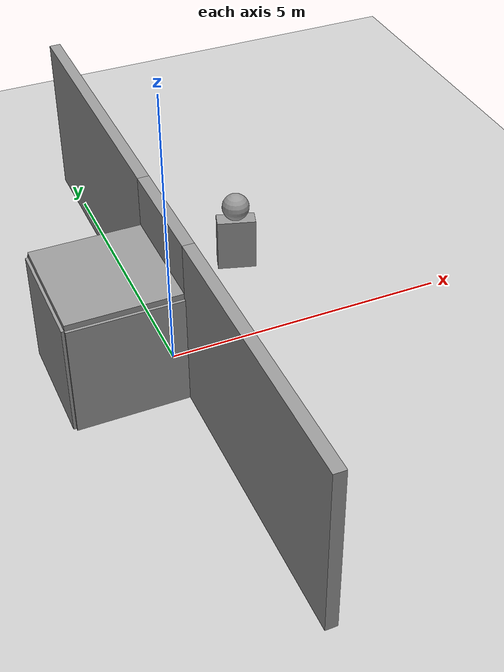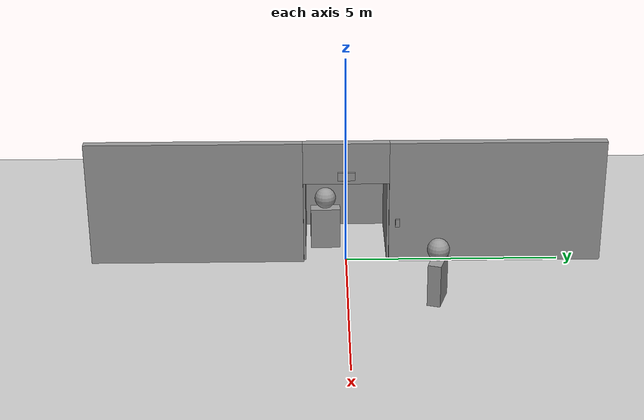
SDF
<sdf version="1.7">
 <world name="default">
  <light name="sun" type="directional">
   <pose>0 0 10 0 -0 0</pose>
   <diffuse>0.8 0.8 0.8 1</diffuse>
   <specular>0.2 0.2 0.2 1</specular>
   <attenuation>
    <range>1000</range>
    <constant>0.9</constant>
    <linear>0.01</linear>
    <quadratic>0.001</quadratic>
   </attenuation>
   <direction>-0.5 0.1 -0.9</direction>
   <spot><inner_angle>0</inner_angle><outer_angle>0</outer_angle><falloff>0</falloff></spot>
  </light>
  <model name="ground_plane">
   <static>1</static>
   <link name="link">
    <collision name="collision">
     <geometry><plane><normal>0 0 1</normal><size>100 100</size></plane></geometry>
     <surface><friction><ode><mu>100</mu><mu2>50</mu2></ode></friction></surface>
    </collision>
    <visual name="visual">
     <cast_shadows>0</cast_shadows>
     <geometry><plane><normal>0 0 1</normal><size>100 100</size></plane></geometry>
     <material>
      <script><uri>file://media/materials/scripts/gazebo.material</uri><name>Gazebo/Grey</name></script>
     </material>
    </visual>
   </link>
  </model>
  <gravity>0 0 -9.8</gravity>
  <magnetic_field>6e-06 2.3e-05 -4.2e-05</magnetic_field>
  <atmosphere type="adiabatic"/>
  <physics type="ode">
   <max_step_size>0.001</max_step_size>
   <real_time_factor>1</real_time_factor>
   <real_time_update_rate>1000</real_time_update_rate>
  </physics>
  <scene><ambient>0.4 0.4 0.4 1</ambient><background>0.7 0.7 0.7 1</background><shadows>1</shadows></scene>
  <spherical_coordinates>
   <surface_model>EARTH_WGS84</surface_model>
   <latitude_deg>0</latitude_deg>
   <longitude_deg>0</longitude_deg>
   <elevation>0</elevation>
   <heading_deg>0</heading_deg>
  </spherical_coordinates>
  <model name="elevator">
   <link name="link_1">
    <inertial>
     <mass>1</mass>
     <inertia>
      <ixx>0.166667</ixx>
      <ixy>0</ixy>
      <ixz>0</ixz>
      <iyy>0.166667</iyy>
      <iyz>0</iyz>
      <izz>0.166667</izz>
     </inertia>
    </inertial>
    <pose>0.125 0 2.2 0 -0 0</pose>
    <visual name="visual">
     <geometry><box><size>0.05 0.4 0.2</size></box></geometry>
     <material>
      <lighting>1</lighting>
      <script><uri>file://media/materials/scripts/gazebo.material</uri><name>Gazebo/Grey</name></script>
      <shader type="pixel"><normal_map>__default__</normal_map></shader>
      <ambient>0.6 0.6 0.6 1</ambient>
      <diffuse>0.6 0.6 0.6 1</diffuse>
      <specular>0.6 0.6 0.6 1</specular>
      <emissive>0 0 0 1</emissive>
     </material>
    </visual>
    <collision name="collision">
     <geometry><box><size>0.05 0.4 0.2</size></box></geometry>
     <surface>
      <friction>
       <ode><mu>1</mu><mu2>1</mu2><fdir1>0 0 0</fdir1><slip1>0</slip1><slip2>0</slip2></ode>
       <torsional>
        <coefficient>1</coefficient>
        <patch_radius>0</patch_radius>
        <surface_radius>0</surface_radius>
        <use_patch_radius>1</use_patch_radius>
        <ode><slip>0</slip></ode>
       </torsional>
      </friction>
      <bounce><restitution_coefficient>0</restitution_coefficient><threshold>1e+06</threshold></bounce>
      <contact>
       <collide_without_contact>0</collide_without_contact>
       <collide_without_contact_bitmask>1</collide_without_contact_bitmask>
       <collide_bitmask>1</collide_bitmask>
       <ode>
        <soft_cfm>0</soft_cfm>
        <soft_erp>0.2</soft_erp>
        <kp>1e+13</kp>
        <kd>1</kd>
        <max_vel>0.01</max_vel>
        <min_depth>0</min_depth>
       </ode>
       <bullet>
        <split_impulse>1</split_impulse>
        <split_impulse_penetration_threshold>-0.01</split_impulse_penetration_threshold>
        <soft_cfm>0</soft_cfm>
        <soft_erp>0.2</soft_erp>
        <kp>1e+13</kp>
        <kd>1</kd>
       </bullet>
      </contact>
     </surface>
    </collision>
   </link>
   <link name="link_1_clone">
    <inertial>
     <mass>1</mass>
     <inertia>
      <ixx>0.166667</ixx>
      <ixy>0</ixy>
      <ixz>0</ixz>
      <iyy>0.166667</iyy>
      <iyz>0</iyz>
      <izz>0.166667</izz>
     </inertia>
    </inertial>
    <pose>0.115 1.2 1 0 -0 0</pose>
    <visual name="visual">
     <geometry><box><size>0.05 0.1 0.2</size></box></geometry>
     <material>
      <lighting>1</lighting>
      <script><uri>file://media/materials/scripts/gazebo.material</uri><name>Gazebo/Grey</name></script>
      <shader type="pixel"><normal_map>__default__</normal_map></shader>
      <ambient>0.6 0.6 0.6 1</ambient>
      <diffuse>0.6 0.6 0.6 1</diffuse>
      <specular>0.6 0.6 0.6 1</specular>
      <emissive>0 0 0 1</emissive>
     </material>
    </visual>
    <collision name="collision">
     <geometry><box><size>0.05 0.1 0.2</size></box></geometry>
     <surface>
      <friction>
       <ode><mu>1</mu><mu2>1</mu2><fdir1>0 0 0</fdir1><slip1>0</slip1><slip2>0</slip2></ode>
       <torsional>
        <coefficient>1</coefficient>
        <patch_radius>0</patch_radius>
        <surface_radius>0</surface_radius>
        <use_patch_radius>1</use_patch_radius>
        <ode><slip>0</slip></ode>
       </torsional>
      </friction>
      <bounce><restitution_coefficient>0</restitution_coefficient><threshold>1e+06</threshold></bounce>
      <contact>
       <collide_without_contact>0</collide_without_contact>
       <collide_without_contact_bitmask>1</collide_without_contact_bitmask>
       <collide_bitmask>1</collide_bitmask>
       <ode>
        <soft_cfm>0</soft_cfm>
        <soft_erp>0.2</soft_erp>
        <kp>1e+13</kp>
        <kd>1</kd>
        <max_vel>0.01</max_vel>
        <min_depth>0</min_depth>
       </ode>
       <bullet>
        <split_impulse>1</split_impulse>
        <split_impulse_penetration_threshold>-0.01</split_impulse_penetration_threshold>
        <soft_cfm>0</soft_cfm>
        <soft_erp>0.2</soft_erp>
        <kp>1e+13</kp>
        <kd>1</kd>
       </bullet>
      </contact>
     </surface>
    </collision>
   </link>
   <link name="link_2">
    <inertial>
     <mass>1</mass>
     <inertia>
      <ixx>0.166667</ixx>
      <ixy>0</ixy>
      <ixz>0</ixz>
      <iyy>0.166667</iyy>
      <iyz>0</iyz>
      <izz>0.166667</izz>
     </inertia>
    </inertial>
    <pose>0 -3.5 1.5 0 -0 0</pose>
    <visual name="visual">
     <geometry><box><size>0.2 5 3</size></box></geometry>
     <material>
      <lighting>1</lighting>
      <script><uri>file://media/materials/scripts/gazebo.material</uri><name>Gazebo/Grey</name></script>
      <shader type="pixel"><normal_map>__default__</normal_map></shader>
      <ambient>0.3 0.3 0.3 1</ambient>
      <diffuse>0.7 0.7 0.7 1</diffuse>
      <specular>0.01 0.01 0.01 1</specular>
      <emissive>0 0 0 1</emissive>
     </material>
    </visual>
    <collision name="collision">
     <geometry><box><size>0.2 5 3</size></box></geometry>
     <surface>
      <friction>
       <ode><mu>1</mu><mu2>1</mu2><fdir1>0 0 0</fdir1><slip1>0</slip1><slip2>0</slip2></ode>
       <torsional>
        <coefficient>1</coefficient>
        <patch_radius>0</patch_radius>
        <surface_radius>0</surface_radius>
        <use_patch_radius>1</use_patch_radius>
        <ode><slip>0</slip></ode>
       </torsional>
      </friction>
      <bounce><restitution_coefficient>0</restitution_coefficient><threshold>1e+06</threshold></bounce>
      <contact>
       <collide_without_contact>0</collide_without_contact>
       <collide_without_contact_bitmask>1</collide_without_contact_bitmask>
       <collide_bitmask>1</collide_bitmask>
       <ode>
        <soft_cfm>0</soft_cfm>
        <soft_erp>0.2</soft_erp>
        <kp>1e+13</kp>
        <kd>1</kd>
        <max_vel>0.01</max_vel>
        <min_depth>0</min_depth>
       </ode>
       <bullet>
        <split_impulse>1</split_impulse>
        <split_impulse_penetration_threshold>-0.01</split_impulse_penetration_threshold>
        <soft_cfm>0</soft_cfm>
        <soft_erp>0.2</soft_erp>
        <kp>1e+13</kp>
        <kd>1</kd>
       </bullet>
      </contact>
     </surface>
    </collision>
   </link>
   <link name="link_2_clone">
    <inertial>
     <mass>1</mass>
     <inertia>
      <ixx>0.166667</ixx>
      <ixy>0</ixy>
      <ixz>0</ixz>
      <iyy>0.166667</iyy>
      <iyz>0</iyz>
      <izz>0.166667</izz>
     </inertia>
    </inertial>
    <pose>0 3.5 1.5 0 -0 0</pose>
    <visual name="visual">
     <geometry><box><size>0.2 5 3</size></box></geometry>
     <material>
      <lighting>1</lighting>
      <script><uri>file://media/materials/scripts/gazebo.material</uri><name>Gazebo/Grey</name></script>
      <shader type="pixel"><normal_map>__default__</normal_map></shader>
      <ambient>0.3 0.3 0.3 1</ambient>
      <diffuse>0.7 0.7 0.7 1</diffuse>
      <specular>0.01 0.01 0.01 1</specular>
      <emissive>0 0 0 1</emissive>
     </material>
    </visual>
    <collision name="collision">
     <geometry><box><size>0.2 5 3</size></box></geometry>
     <surface>
      <friction>
       <ode><mu>1</mu><mu2>1</mu2><fdir1>0 0 0</fdir1><slip1>0</slip1><slip2>0</slip2></ode>
       <torsional>
        <coefficient>1</coefficient>
        <patch_radius>0</patch_radius>
        <surface_radius>0</surface_radius>
        <use_patch_radius>1</use_patch_radius>
        <ode><slip>0</slip></ode>
       </torsional>
      </friction>
      <bounce><restitution_coefficient>0</restitution_coefficient><threshold>1e+06</threshold></bounce>
      <contact>
       <collide_without_contact>0</collide_without_contact>
       <collide_without_contact_bitmask>1</collide_without_contact_bitmask>
       <collide_bitmask>1</collide_bitmask>
       <ode>
        <soft_cfm>0</soft_cfm>
        <soft_erp>0.2</soft_erp>
        <kp>1e+13</kp>
        <kd>1</kd>
        <max_vel>0.01</max_vel>
        <min_depth>0</min_depth>
       </ode>
       <bullet>
        <split_impulse>1</split_impulse>
        <split_impulse_penetration_threshold>-0.01</split_impulse_penetration_threshold>
        <soft_cfm>0</soft_cfm>
        <soft_erp>0.2</soft_erp>
        <kp>1e+13</kp>
        <kd>1</kd>
       </bullet>
      </contact>
     </surface>
    </collision>
   </link>
   <link name="link_2_clone_0">
    <inertial>
     <mass>1</mass>
     <inertia>
      <ixx>0.166667</ixx>
      <ixy>0</ixy>
      <ixz>0</ixz>
      <iyy>0.166667</iyy>
      <iyz>0</iyz>
      <izz>0.166667</izz>
     </inertia>
    </inertial>
    <pose>0 0 2.5 0 -0 0</pose>
    <visual name="visual">
     <geometry><box><size>0.2 2 1</size></box></geometry>
     <material>
      <lighting>1</lighting>
      <script><uri>file://media/materials/scripts/gazebo.material</uri><name>Gazebo/Grey</name></script>
      <shader type="pixel"><normal_map>__default__</normal_map></shader>
      <ambient>0.3 0.3 0.3 1</ambient>
      <diffuse>0.7 0.7 0.7 1</diffuse>
      <specular>0.01 0.01 0.01 1</specular>
      <emissive>0 0 0 1</emissive>
     </material>
    </visual>
    <collision name="collision">
     <geometry><box><size>0.2 2 1</size></box></geometry>
     <surface>
      <friction>
       <ode><mu>1</mu><mu2>1</mu2><fdir1>0 0 0</fdir1><slip1>0</slip1><slip2>0</slip2></ode>
       <torsional>
        <coefficient>1</coefficient>
        <patch_radius>0</patch_radius>
        <surface_radius>0</surface_radius>
        <use_patch_radius>1</use_patch_radius>
        <ode><slip>0</slip></ode>
       </torsional>
      </friction>
      <bounce><restitution_coefficient>0</restitution_coefficient><threshold>1e+06</threshold></bounce>
      <contact>
       <collide_without_contact>0</collide_without_contact>
       <collide_without_contact_bitmask>1</collide_without_contact_bitmask>
       <collide_bitmask>1</collide_bitmask>
       <ode>
        <soft_cfm>0</soft_cfm>
        <soft_erp>0.2</soft_erp>
        <kp>1e+13</kp>
        <kd>1</kd>
        <max_vel>0.01</max_vel>
        <min_depth>0</min_depth>
       </ode>
       <bullet>
        <split_impulse>1</split_impulse>
        <split_impulse_penetration_threshold>-0.01</split_impulse_penetration_threshold>
        <soft_cfm>0</soft_cfm>
        <soft_erp>0.2</soft_erp>
        <kp>1e+13</kp>
        <kd>1</kd>
       </bullet>
      </contact>
     </surface>
    </collision>
   </link>
   <link name="link_2_clone_1_clone_0">
    <inertial>
     <mass>1</mass>
     <inertia>
      <ixx>0.166667</ixx>
      <ixy>0</ixy>
      <ixz>0</ixz>
      <iyy>0.166667</iyy>
      <iyz>0</iyz>
      <izz>0.166667</izz>
     </inertia>
    </inertial>
    <pose>-2 0 0.999999 0 -0 0</pose>
    <visual name="visual">
     <geometry><box><size>0.1 2 2</size></box></geometry>
     <material>
      <lighting>1</lighting>
      <script><uri>file://media/materials/scripts/gazebo.material</uri><name>Gazebo/Grey</name></script>
      <shader type="pixel"><normal_map>__default__</normal_map></shader>
      <ambient>0.3 0.3 0.3 1</ambient>
      <diffuse>0.7 0.7 0.7 1</diffuse>
      <specular>0.01 0.01 0.01 1</specular>
      <emissive>0 0 0 1</emissive>
     </material>
    </visual>
    <collision name="collision">
     <geometry><box><size>0.1 2 2</size></box></geometry>
     <surface>
      <friction>
       <ode><mu>1</mu><mu2>1</mu2><fdir1>0 0 0</fdir1><slip1>0</slip1><slip2>0</slip2></ode>
       <torsional>
        <coefficient>1</coefficient>
        <patch_radius>0</patch_radius>
        <surface_radius>0</surface_radius>
        <use_patch_radius>1</use_patch_radius>
        <ode><slip>0</slip></ode>
       </torsional>
      </friction>
      <bounce><restitution_coefficient>0</restitution_coefficient><threshold>1e+06</threshold></bounce>
      <contact>
       <collide_without_contact>0</collide_without_contact>
       <collide_without_contact_bitmask>1</collide_without_contact_bitmask>
       <collide_bitmask>1</collide_bitmask>
       <ode>
        <soft_cfm>0</soft_cfm>
        <soft_erp>0.2</soft_erp>
        <kp>1e+13</kp>
        <kd>1</kd>
        <max_vel>0.01</max_vel>
        <min_depth>0</min_depth>
       </ode>
       <bullet>
        <split_impulse>1</split_impulse>
        <split_impulse_penetration_threshold>-0.01</split_impulse_penetration_threshold>
        <soft_cfm>0</soft_cfm>
        <soft_erp>0.2</soft_erp>
        <kp>1e+13</kp>
        <kd>1</kd>
       </bullet>
      </contact>
     </surface>
    </collision>
   </link>
   <link name="link_2_clone_1_clone_0_clone">
    <inertial>
     <mass>1</mass>
     <inertia>
      <ixx>0.166667</ixx>
      <ixy>0</ixy>
      <ixz>0</ixz>
      <iyy>0.166667</iyy>
      <iyz>0</iyz>
      <izz>0.166667</izz>
     </inertia>
    </inertial>
    <pose>-1 1 0.999999 0 -0 0</pose>
    <visual name="visual">
     <geometry><box><size>2 0.1 2</size></box></geometry>
     <material>
      <lighting>1</lighting>
      <script><uri>file://media/materials/scripts/gazebo.material</uri><name>Gazebo/Grey</name></script>
      <shader type="pixel"><normal_map>__default__</normal_map></shader>
      <ambient>0.3 0.3 0.3 1</ambient>
      <diffuse>0.7 0.7 0.7 1</diffuse>
      <specular>0.01 0.01 0.01 1</specular>
      <emissive>0 0 0 1</emissive>
     </material>
    </visual>
    <collision name="collision">
     <geometry><box><size>2 0.1 2</size></box></geometry>
     <surface>
      <friction>
       <ode><mu>1</mu><mu2>1</mu2><fdir1>0 0 0</fdir1><slip1>0</slip1><slip2>0</slip2></ode>
       <torsional>
        <coefficient>1</coefficient>
        <patch_radius>0</patch_radius>
        <surface_radius>0</surface_radius>
        <use_patch_radius>1</use_patch_radius>
        <ode><slip>0</slip></ode>
       </torsional>
      </friction>
      <bounce><restitution_coefficient>0</restitution_coefficient><threshold>1e+06</threshold></bounce>
      <contact>
       <collide_without_contact>0</collide_without_contact>
       <collide_without_contact_bitmask>1</collide_without_contact_bitmask>
       <collide_bitmask>1</collide_bitmask>
       <ode>
        <soft_cfm>0</soft_cfm>
        <soft_erp>0.2</soft_erp>
        <kp>1e+13</kp>
        <kd>1</kd>
        <max_vel>0.01</max_vel>
        <min_depth>0</min_depth>
       </ode>
       <bullet>
        <split_impulse>1</split_impulse>
        <split_impulse_penetration_threshold>-0.01</split_impulse_penetration_threshold>
        <soft_cfm>0</soft_cfm>
        <soft_erp>0.2</soft_erp>
        <kp>1e+13</kp>
        <kd>1</kd>
       </bullet>
      </contact>
     </surface>
    </collision>
   </link>
   <link name="link_2_clone_1_clone_0_clone_clone">
    <inertial>
     <mass>1</mass>
     <inertia>
      <ixx>0.166667</ixx>
      <ixy>0</ixy>
      <ixz>0</ixz>
      <iyy>0.166667</iyy>
      <iyz>0</iyz>
      <izz>0.166667</izz>
     </inertia>
    </inertial>
    <pose>-1 -1 1 0 -0 0</pose>
    <visual name="visual">
     <geometry><box><size>2 0.1 2</size></box></geometry>
     <material>
      <lighting>1</lighting>
      <script><uri>file://media/materials/scripts/gazebo.material</uri><name>Gazebo/Grey</name></script>
      <shader type="pixel"><normal_map>__default__</normal_map></shader>
      <ambient>0.3 0.3 0.3 1</ambient>
      <diffuse>0.7 0.7 0.7 1</diffuse>
      <specular>0.01 0.01 0.01 1</specular>
      <emissive>0 0 0 1</emissive>
     </material>
    </visual>
    <collision name="collision">
     <geometry><box><size>2 0.1 2</size></box></geometry>
     <surface>
      <friction>
       <ode><mu>1</mu><mu2>1</mu2><fdir1>0 0 0</fdir1><slip1>0</slip1><slip2>0</slip2></ode>
       <torsional>
        <coefficient>1</coefficient>
        <patch_radius>0</patch_radius>
        <surface_radius>0</surface_radius>
        <use_patch_radius>1</use_patch_radius>
        <ode><slip>0</slip></ode>
       </torsional>
      </friction>
      <bounce><restitution_coefficient>0</restitution_coefficient><threshold>1e+06</threshold></bounce>
      <contact>
       <collide_without_contact>0</collide_without_contact>
       <collide_without_contact_bitmask>1</collide_without_contact_bitmask>
       <collide_bitmask>1</collide_bitmask>
       <ode>
        <soft_cfm>0</soft_cfm>
        <soft_erp>0.2</soft_erp>
        <kp>1e+13</kp>
        <kd>1</kd>
        <max_vel>0.01</max_vel>
        <min_depth>0</min_depth>
       </ode>
       <bullet>
        <split_impulse>1</split_impulse>
        <split_impulse_penetration_threshold>-0.01</split_impulse_penetration_threshold>
        <soft_cfm>0</soft_cfm>
        <soft_erp>0.2</soft_erp>
        <kp>1e+13</kp>
        <kd>1</kd>
       </bullet>
      </contact>
     </surface>
    </collision>
   </link>
   <link name="link_2_clone_1_clone_0_clone_clone_0">
    <inertial>
     <mass>1</mass>
     <inertia>
      <ixx>0.166667</ixx>
      <ixy>0</ixy>
      <ixz>0</ixz>
      <iyy>0.166667</iyy>
      <iyz>0</iyz>
      <izz>0.166667</izz>
     </inertia>
    </inertial>
    <pose>-1 -0 2.05 0 -0 0</pose>
    <visual name="visual">
     <geometry><box><size>2 2 0.1</size></box></geometry>
     <material>
      <lighting>1</lighting>
      <script><uri>file://media/materials/scripts/gazebo.material</uri><name>Gazebo/Grey</name></script>
      <shader type="pixel"><normal_map>__default__</normal_map></shader>
      <ambient>0.3 0.3 0.3 1</ambient>
      <diffuse>0.7 0.7 0.7 1</diffuse>
      <specular>0.01 0.01 0.01 1</specular>
      <emissive>0 0 0 1</emissive>
     </material>
    </visual>
    <collision name="collision">
     <geometry><box><size>2 2 0.1</size></box></geometry>
     <surface>
      <friction>
       <ode><mu>1</mu><mu2>1</mu2><fdir1>0 0 0</fdir1><slip1>0</slip1><slip2>0</slip2></ode>
       <torsional>
        <coefficient>1</coefficient>
        <patch_radius>0</patch_radius>
        <surface_radius>0</surface_radius>
        <use_patch_radius>1</use_patch_radius>
        <ode><slip>0</slip></ode>
       </torsional>
      </friction>
      <bounce><restitution_coefficient>0</restitution_coefficient><threshold>1e+06</threshold></bounce>
      <contact>
       <collide_without_contact>0</collide_without_contact>
       <collide_without_contact_bitmask>1</collide_without_contact_bitmask>
       <collide_bitmask>1</collide_bitmask>
       <ode>
        <soft_cfm>0</soft_cfm>
        <soft_erp>0.2</soft_erp>
        <kp>1e+13</kp>
        <kd>1</kd>
        <max_vel>0.01</max_vel>
        <min_depth>0</min_depth>
       </ode>
       <bullet>
        <split_impulse>1</split_impulse>
        <split_impulse_penetration_threshold>-0.01</split_impulse_penetration_threshold>
        <soft_cfm>0</soft_cfm>
        <soft_erp>0.2</soft_erp>
        <kp>1e+13</kp>
        <kd>1</kd>
       </bullet>
      </contact>
     </surface>
    </collision>
   </link>
   <model name="person">
    <link name="link_0">
     <inertial>
      <mass>1</mass>
      <inertia>
       <ixx>0.166667</ixx>
       <ixy>0</ixy>
       <ixz>0</ixz>
       <iyy>0.166667</iyy>
       <iyz>0</iyz>
       <izz>0.166667</izz>
      </inertia>
     </inertial>
     <pose>0 -0 0.5 0 -0 0</pose>
     <visual name="visual">
      <geometry><box><size>0.7 0.3 1</size></box></geometry>
      <material>
       <lighting>1</lighting>
       <script><uri>file://media/materials/scripts/gazebo.material</uri><name>Gazebo/Grey</name></script>
       <shader type="pixel"><normal_map>__default__</normal_map></shader>
       <ambient>0.9 0.9 0.9 1</ambient>
       <diffuse>0.9 0.9 0.9 1</diffuse>
       <specular>0.01 0.01 0.01 1</specular>
       <emissive>0 0 0 1</emissive>
      </material>
     </visual>
     <collision name="collision">
      <geometry><box><size>0.7 0.3 1</size></box></geometry>
      <surface>
       <friction>
        <ode><mu>1</mu><mu2>1</mu2><fdir1>0 0 0</fdir1><slip1>0</slip1><slip2>0</slip2></ode>
        <torsional>
         <coefficient>1</coefficient>
         <patch_radius>0</patch_radius>
         <surface_radius>0</surface_radius>
         <use_patch_radius>1</use_patch_radius>
         <ode><slip>0</slip></ode>
        </torsional>
       </friction>
       <bounce><restitution_coefficient>0</restitution_coefficient><threshold>1e+06</threshold></bounce>
       <contact>
        <collide_without_contact>0</collide_without_contact>
        <collide_without_contact_bitmask>1</collide_without_contact_bitmask>
        <collide_bitmask>1</collide_bitmask>
        <ode>
         <soft_cfm>0</soft_cfm>
         <soft_erp>0.2</soft_erp>
         <kp>1e+13</kp>
         <kd>1</kd>
         <max_vel>0.01</max_vel>
         <min_depth>0</min_depth>
        </ode>
        <bullet>
         <split_impulse>1</split_impulse>
         <split_impulse_penetration_threshold>-0.01</split_impulse_penetration_threshold>
         <soft_cfm>0</soft_cfm>
         <soft_erp>0.2</soft_erp>
         <kp>1e+13</kp>
         <kd>1</kd>
        </bullet>
       </contact>
      </surface>
     </collision>
    </link>
    <link name="link_1">
     <inertial>
      <mass>1</mass>
      <inertia><ixx>0.1</ixx><ixy>0</ixy><ixz>0</ixz><iyy>0.1</iyy><iyz>0</iyz><izz>0.1</izz></inertia>
     </inertial>
     <pose>0 0 1.25 0 -0 0</pose>
     <visual name="visual">
      <geometry><sphere><radius>0.25</radius></sphere></geometry>
      <material>
       <lighting>1</lighting>
       <script><uri>file://media/materials/scripts/gazebo.material</uri><name>Gazebo/Grey</name></script>
       <shader type="pixel"><normal_map>__default__</normal_map></shader>
       <ambient>0.9 0.9 0.9 1</ambient>
       <diffuse>0.9 0.9 0.9 1</diffuse>
       <specular>0.01 0.01 0.01 1</specular>
       <emissive>0 0 0 1</emissive>
      </material>
     </visual>
     <collision name="collision">
      <geometry><sphere><radius>0.25</radius></sphere></geometry>
      <surface>
       <friction>
        <ode><mu>1</mu><mu2>1</mu2><fdir1>0 0 0</fdir1><slip1>0</slip1><slip2>0</slip2></ode>
        <torsional>
         <coefficient>1</coefficient>
         <patch_radius>0</patch_radius>
         <surface_radius>0</surface_radius>
         <use_patch_radius>1</use_patch_radius>
         <ode><slip>0</slip></ode>
        </torsional>
       </friction>
       <bounce><restitution_coefficient>0</restitution_coefficient><threshold>1e+06</threshold></bounce>
       <contact>
        <collide_without_contact>0</collide_without_contact>
        <collide_without_contact_bitmask>1</collide_without_contact_bitmask>
        <collide_bitmask>1</collide_bitmask>
        <ode>
         <soft_cfm>0</soft_cfm>
         <soft_erp>0.2</soft_erp>
         <kp>1e+13</kp>
         <kd>1</kd>
         <max_vel>0.01</max_vel>
         <min_depth>0</min_depth>
        </ode>
        <bullet>
         <split_impulse>1</split_impulse>
         <split_impulse_penetration_threshold>-0.01</split_impulse_penetration_threshold>
         <soft_cfm>0</soft_cfm>
         <soft_erp>0.2</soft_erp>
         <kp>1e+13</kp>
         <kd>1</kd>
        </bullet>
       </contact>
      </surface>
     </collision>
    </link>
    <static>1</static>
    <pose>-0.778836 -0.482461 -0 0 0 -1.54091</pose>
   </model>
   <joint name="link_1_JOINT_0" type="fixed">
    <parent>link_1</parent>
    <child>link_2_clone_0</child>
    <physics>
     <ode><limit><cfm>0</cfm><erp>0.2</erp></limit><suspension><cfm>0</cfm><erp>0.2</erp></suspension></ode>
    </physics>
   </joint>
   <joint name="link_1_JOINT_2" type="fixed">
    <parent>person::link_1</parent>
    <child>person::link_0</child>
    <physics>
     <ode><limit><cfm>0</cfm><erp>0.2</erp></limit><suspension><cfm>0</cfm><erp>0.2</erp></suspension></ode>
    </physics>
   </joint>
   <joint name="link_2_JOINT_2" type="fixed">
    <parent>link_2_clone</parent>
    <child>link_2_clone_0</child>
    <pose>0 0 0 -0.09 0 0</pose>
    <physics>
     <ode><limit><cfm>0</cfm><erp>0.2</erp></limit><suspension><cfm>0</cfm><erp>0.2</erp></suspension></ode>
    </physics>
   </joint>
   <joint name="link_2_JOINT_3" type="fixed">
    <parent>link_2</parent>
    <child>link_2_clone_0</child>
    <physics>
     <ode><limit><cfm>0</cfm><erp>0.2</erp></limit><suspension><cfm>0</cfm><erp>0.2</erp></suspension></ode>
    </physics>
   </joint>
   <joint name="link_2_JOINT_5" type="revolute">
    <parent>link_2</parent>
    <child>link_2_clone_1_clone_0_clone_clone</child>
    <axis>
     <xyz>1 0 0</xyz>
     <limit>
      <lower>-1.79769e+308</lower>
      <upper>1.79769e+308</upper>
      <effort>-1</effort>
      <velocity>-1</velocity>
     </limit>
     <dynamics>
      <spring_reference>0</spring_reference>
      <spring_stiffness>0</spring_stiffness>
      <damping>0</damping>
      <friction>0</friction>
     </dynamics>
    </axis>
    <physics>
     <ode><limit><cfm>0</cfm><erp>0.2</erp></limit><suspension><cfm>0</cfm><erp>0.2</erp></suspension></ode>
    </physics>
   </joint>
   <joint name="link_2_clone_1_clone_0_JOINT_9" type="revolute">
    <parent>link_2_clone_1_clone_0</parent>
    <child>link_2_clone_1_clone_0_clone_clone_0</child>
    <axis>
     <xyz>1 0 0</xyz>
     <limit>
      <lower>-1.79769e+308</lower>
      <upper>1.79769e+308</upper>
      <effort>-1</effort>
      <velocity>-1</velocity>
     </limit>
     <dynamics>
      <spring_reference>0</spring_reference>
      <spring_stiffness>0</spring_stiffness>
      <damping>0</damping>
      <friction>0</friction>
     </dynamics>
    </axis>
    <physics>
     <ode><limit><cfm>0</cfm><erp>0.2</erp></limit><suspension><cfm>0</cfm><erp>0.2</erp></suspension></ode>
    </physics>
   </joint>
   <joint name="link_2_clone_1_clone_0_clone_JOINT_8" type="revolute">
    <parent>link_2_clone_1_clone_0_clone</parent>
    <child>link_2_clone_1_clone_0</child>
    <axis>
     <xyz>1 0 0</xyz>
     <limit>
      <lower>-1.79769e+308</lower>
      <upper>1.79769e+308</upper>
      <effort>-1</effort>
      <velocity>-1</velocity>
     </limit>
     <dynamics>
      <spring_reference>0</spring_reference>
      <spring_stiffness>0</spring_stiffness>
      <damping>0</damping>
      <friction>0</friction>
     </dynamics>
    </axis>
    <physics>
     <ode><limit><cfm>0</cfm><erp>0.2</erp></limit><suspension><cfm>0</cfm><erp>0.2</erp></suspension></ode>
    </physics>
   </joint>
   <joint name="link_2_clone_1_clone_0_clone_clone_0_JOINT_6" type="revolute">
    <parent>link_2_clone_1_clone_0_clone_clone_0</parent>
    <child>link_2_clone_1_clone_0_clone_clone</child>
    <axis>
     <xyz>1 0 0</xyz>
     <limit>
      <lower>-1.79769e+308</lower>
      <upper>1.79769e+308</upper>
      <effort>-1</effort>
      <velocity>-1</velocity>
     </limit>
     <dynamics>
      <spring_reference>0</spring_reference>
      <spring_stiffness>0</spring_stiffness>
      <damping>0</damping>
      <friction>0</friction>
     </dynamics>
    </axis>
    <physics>
     <ode><limit><cfm>0</cfm><erp>0.2</erp></limit><suspension><cfm>0</cfm><erp>0.2</erp></suspension></ode>
    </physics>
   </joint>
   <joint name="link_2_clone_JOINT_1" type="fixed">
    <parent>link_2_clone</parent>
    <child>link_1_clone</child>
    <physics>
     <ode><limit><cfm>0</cfm><erp>0.2</erp></limit><suspension><cfm>0</cfm><erp>0.2</erp></suspension></ode>
    </physics>
   </joint>
   <joint name="link_2_clone_JOINT_4" type="fixed">
    <parent>link_2_clone</parent>
    <child>link_2_clone_1_clone_0_clone</child>
    <pose>0 0 0 -0.06 0 0</pose>
    <physics>
     <ode><limit><cfm>0</cfm><erp>0.2</erp></limit><suspension><cfm>0</cfm><erp>0.2</erp></suspension></ode>
    </physics>
   </joint>
   <static>1</static>
  </model>
  <model name="person_0">
   <link name="link_0">
    <inertial>
     <mass>1</mass>
     <inertia>
      <ixx>0.166667</ixx>
      <ixy>0</ixy>
      <ixz>0</ixz>
      <iyy>0.166667</iyy>
      <iyz>0</iyz>
      <izz>0.166667</izz>
     </inertia>
    </inertial>
    <pose>-5e-06 2e-06 0.5 0 -0 0</pose>
    <visual name="visual">
     <geometry><box><size>0.7 0.3 1</size></box></geometry>
     <material>
      <lighting>1</lighting>
      <script><uri>file://media/materials/scripts/gazebo.material</uri><name>Gazebo/Grey</name></script>
      <shader type="pixel"><normal_map>__default__</normal_map></shader>
      <ambient>0.9 0.9 0.9 1</ambient>
      <diffuse>0.9 0.9 0.9 1</diffuse>
      <specular>0.01 0.01 0.01 1</specular>
      <emissive>0 0 0 1</emissive>
     </material>
    </visual>
    <collision name="collision">
     <geometry><box><size>0.7 0.3 1</size></box></geometry>
     <surface>
      <friction>
       <ode><mu>1</mu><mu2>1</mu2><fdir1>0 0 0</fdir1><slip1>0</slip1><slip2>0</slip2></ode>
       <torsional>
        <coefficient>1</coefficient>
        <patch_radius>0</patch_radius>
        <surface_radius>0</surface_radius>
        <use_patch_radius>1</use_patch_radius>
        <ode><slip>0</slip></ode>
       </torsional>
      </friction>
      <bounce><restitution_coefficient>0</restitution_coefficient><threshold>1e+06</threshold></bounce>
      <contact>
       <collide_without_contact>0</collide_without_contact>
       <collide_without_contact_bitmask>1</collide_without_contact_bitmask>
       <collide_bitmask>1</collide_bitmask>
       <ode>
        <soft_cfm>0</soft_cfm>
        <soft_erp>0.2</soft_erp>
        <kp>1e+13</kp>
        <kd>1</kd>
        <max_vel>0.01</max_vel>
        <min_depth>0</min_depth>
       </ode>
       <bullet>
        <split_impulse>1</split_impulse>
        <split_impulse_penetration_threshold>-0.01</split_impulse_penetration_threshold>
        <soft_cfm>0</soft_cfm>
        <soft_erp>0.2</soft_erp>
        <kp>1e+13</kp>
        <kd>1</kd>
       </bullet>
      </contact>
     </surface>
    </collision>
   </link>
   <link name="link_1">
    <inertial>
     <mass>1</mass>
     <inertia><ixx>0.1</ixx><ixy>0</ixy><ixz>0</ixz><iyy>0.1</iyy><iyz>0</iyz><izz>0.1</izz></inertia>
    </inertial>
    <pose>0 -0 1.25 0 -0 0</pose>
    <visual name="visual">
     <geometry><sphere><radius>0.25</radius></sphere></geometry>
     <material>
      <lighting>1</lighting>
      <script><uri>file://media/materials/scripts/gazebo.material</uri><name>Gazebo/Grey</name></script>
      <shader type="pixel"><normal_map>__default__</normal_map></shader>
      <ambient>0.9 0.9 0.9 1</ambient>
      <diffuse>0.9 0.9 0.9 1</diffuse>
      <specular>0.01 0.01 0.01 1</specular>
      <emissive>0 0 0 1</emissive>
     </material>
    </visual>
    <collision name="collision">
     <geometry><sphere><radius>0.25</radius></sphere></geometry>
     <surface>
      <friction>
       <ode><mu>1</mu><mu2>1</mu2><fdir1>0 0 0</fdir1><slip1>0</slip1><slip2>0</slip2></ode>
       <torsional>
        <coefficient>1</coefficient>
        <patch_radius>0</patch_radius>
        <surface_radius>0</surface_radius>
        <use_patch_radius>1</use_patch_radius>
        <ode><slip>0</slip></ode>
       </torsional>
      </friction>
      <bounce><restitution_coefficient>0</restitution_coefficient><threshold>1e+06</threshold></bounce>
      <contact>
       <collide_without_contact>0</collide_without_contact>
       <collide_without_contact_bitmask>1</collide_without_contact_bitmask>
       <collide_bitmask>1</collide_bitmask>
       <ode>
        <soft_cfm>0</soft_cfm>
        <soft_erp>0.2</soft_erp>
        <kp>1e+13</kp>
        <kd>1</kd>
        <max_vel>0.01</max_vel>
        <min_depth>0</min_depth>
       </ode>
       <bullet>
        <split_impulse>1</split_impulse>
        <split_impulse_penetration_threshold>-0.01</split_impulse_penetration_threshold>
        <soft_cfm>0</soft_cfm>
        <soft_erp>0.2</soft_erp>
        <kp>1e+13</kp>
        <kd>1</kd>
       </bullet>
      </contact>
     </surface>
    </collision>
   </link>
   <joint name="link_1_JOINT_0" type="fixed">
    <parent>link_1</parent>
    <child>link_0</child>
    <physics>
     <ode><limit><cfm>0</cfm><erp>0.2</erp></limit><suspension><cfm>0</cfm><erp>0.2</erp></suspension></ode>
    </physics>
   </joint>
   <static>0</static>
   <pose>2 2 0 0 0 -0.3</pose>
  </model>
 </world>
</sdf>
